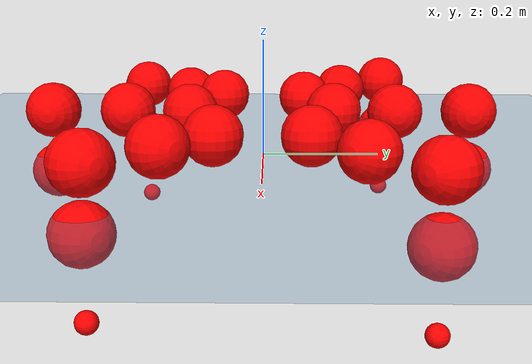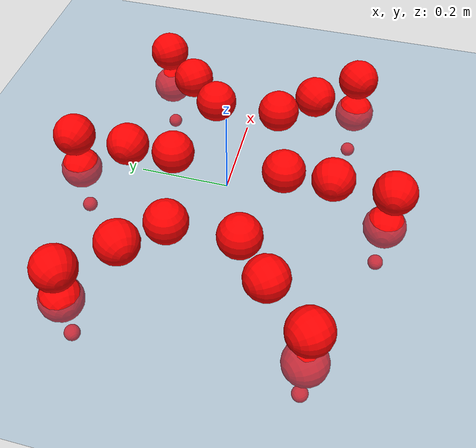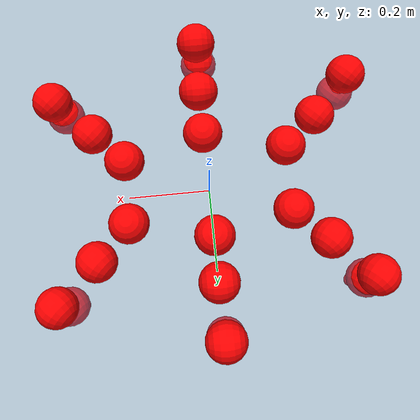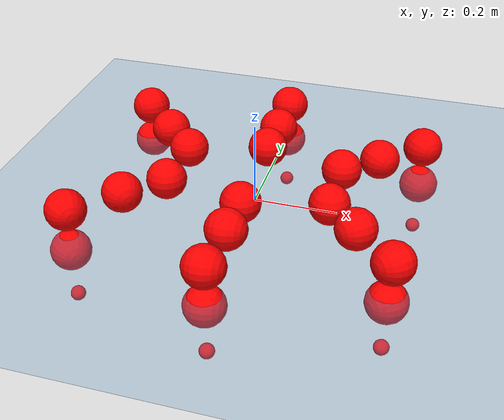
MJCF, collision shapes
<mujoco model="Golem">
  <compiler angle="radian" assetdir="assets" balanceinertia="true" inertiafromgeom="false"/>

  <option timestep="0.005" density="1.2" viscosity="2e-05"/>

  <size nkey="1"/>

  <visual>
    <quality shadowsize="8192"/>
    <map shadowclip="0.5"/>
  </visual>

  <default>
    <default class="/">
      <joint armature="0.01" damping="0.01" frictionloss="0.01"/>
      <geom contype="0" conaffinity="0" group="1" solref="-1000 -80"/>
      <site size="0.01 0.005 0.005" group="5"/>
      <general forcelimited="true" biastype="affine" gainprm="25" biasprm="0 -25 -0.5"/>
      <default class="visual">
        <geom type="mesh" group="2"/>
      </default>
      <default class="collision">
        <geom group="3"/>
      </default>
      <default class="foot">
        <geom size="0.01 0 0" condim="6" group="4" priority="1" solimp="0.015 1 0.01"/>
      </default>
      <default class="reward_collision_sphere">
        <geom group="5" rgba="1 0 0 1"/>
      </default>
    </default>
  </default>

  <asset>
    <texture type="skybox" colorspace="auto" name="//unnamed_texture_0" builtin="gradient" rgb1="0.95 0.95 0.95" rgb2="0.95 0.95 0.95" width="100" height="600"/>
    <texture type="2d" colorspace="auto" name="texplane" builtin="checker" rgb1="0.345 0.575 0.748" rgb2="0.345 0.575 0.748" markrgb="1 1 1" width="512" height="512"/>
    <material name="MatPlane" class="/" texture="texplane" texuniform="true" texrepeat="2 2" specular="0.9"/>
    <mesh name="body" class="/" file="body.stl" scale="0.001 0.001 0.001"/>
    <mesh name="coxa" class="/" file="coxa.stl" scale="0.001 0.001 0.001"/>
    <mesh name="femur" class="/" file="femur.stl" scale="0.001 0.001 0.001"/>
    <mesh name="tibia" class="/" file="tibia.stl" scale="0.001 0.001 0.001"/>
    <mesh name="tarsus" class="/" file="tarsus.stl" scale="0.001 0.001 0.001"/>
  </asset>

  <worldbody>
    <geom name="floor" class="/" size="100 100 0.125" type="plane" group="0" material="MatPlane"/>
    <light name="toplight_shadow" class="/" pos="0 0 5" dir="0.0990148 0.0990148 -0.990148" type="directional" ambient="0.04 0.04 0.04" diffuse="0.55 0.55 0.55" specular="0.12 0.12 0.12"/>
    <light name="toplight_fill" class="/" pos="0 0 5" dir="0.0990148 0.0990148 -0.990148" type="directional" castshadow="false" ambient="0.04 0.04 0.04" diffuse="0.3 0.3 0.3" specular="0.08 0.08 0.08"/>
    <body name="trunk" pos="0.000505944 -0.000500969 -0.000920154" quat="0.999999 0.00106139 0.000573879 -7.76206e-05">
      <inertial pos="-0.00208097 -0.00261837 0.00312006" quat="0.999825 0.0094366 -0.00398648 -0.0156847" mass="6.12698" diaginertia="0.0258086 0.0270629 0.01885"/>
      <joint name="//unnamed_joint_0" type="free"/>
      <geom name="//unnamed_geom_1" class="/" pos="0 0 0.0731211" quat="1 0 0 0" type="mesh" rgba="0.9 0.9 0.9 1" mesh="body"/>
      <site name="imu" class="/" pos="0.165202 -0.0108319 0.108269" size="0.0119374"/>
      <camera name="track" class="/" pos="0 -2.43689 0" quat="0.707107 0.707107 0 0" mode="trackcom"/>
      <camera name="ego_camera" class="/" pos="0.158635 0 0.114252" quat="-0.5 -0.5 0.5 0.5"/>
      <body name="coxa_RR" pos="-0.217814 -0.102947 0.0753497" quat="0.382687 -1.46819e-06 -4.35047e-06 -0.923878">
        <inertial pos="-0.0016718 -0.000834982 -0.00143562" quat="1 -0.000308121 -4.3532e-05 0.000278248" mass="0.344098" diaginertia="0.0265816 0.0270778 0.0197817"/>
        <joint name="coxa_joint_RR" class="/" pos="0 0 0" axis="0.000101905 -5.02668e-05 -1" range="-3.16815 3.06523" armature="0.0111247" damping="0" frictionloss="0.011634"/>
        <geom name="//unnamed_geom_2" class="/" type="mesh" rgba="0.2 0.2 0.2 1" mesh="coxa"/>
        <geom name="//unnamed_geom_3" class="reward_collision_sphere" size="0.0477497" pos="-0.0366081 0 0"/>
        <body name="femur_RR" pos="0.0726332 -0.00570176 -0.00587429" quat="0.50028 -0.49959 0.49912 0.501008">
          <inertial pos="-0.00195321 -0.003598 -0.00494463" quat="0.999921 -0.0101046 0.00419359 -0.00614706" mass="0.34052" diaginertia="0.0268538 0.0277441 0.0187296"/>
          <joint name="femur_joint_RR" class="/" pos="0 0 0" axis="-0.0127188 -0.00679794 -0.999896" range="-3.08895 3.13676" armature="0.0133032" damping="0.00909223" frictionloss="0.0089074"/>
          <geom name="//unnamed_geom_4" class="/" type="mesh" rgba="0.9 0.9 0.9 1" mesh="femur"/>
          <geom name="//unnamed_geom_5" class="reward_collision_sphere" size="0.0477497"/>
          <body name="tibia_RR" pos="4.77614e-05 -0.135926 0.0053681" quat="-0.0002264 1 0.000821266 -8.90099e-05">
            <inertial pos="0.000588743 0.004529 -0.00230258" quat="0.999957 -0.00648098 -0.00126173 -0.00645435" mass="0.342947" diaginertia="0.0271979 0.0265658 0.0192443"/>
            <joint name="tibia_joint_RR" class="/" pos="0 0 0" axis="-0.00371018 0.00150747 0.999992" stiffness="0.0083942" range="-3.13809 3.13794" armature="0.013061" damping="0" frictionloss="0.011947"/>
            <geom name="//unnamed_geom_6" class="/" type="mesh" rgba="0.2 0.2 0.2 1" mesh="tibia"/>
            <geom name="//unnamed_geom_7" class="reward_collision_sphere" size="0.0477497"/>
            <body name="tarsus_RR" pos="0.111222 0.00141639 1.31687e-05" quat="0.999999 -0.000835011 -0.000638907 5.15399e-05">
              <inertial pos="0.0733409 0.00313402 -0.00113185" quat="0.498966 0.499708 0.498802 0.502515" mass="0.340614" diaginertia="0.0263287 0.0264299 0.0203714"/>
              <joint name="tarsus_joint_RR" class="/" pos="0 0 0" axis="-0.00558963 -0.0132768 0.999896" range="-3.04312 3.03317" armature="0.0127807" damping="0" frictionloss="0.012081"/>
              <geom name="//unnamed_geom_8" class="/" type="mesh" rgba="0.9 0.9 0.9 1" mesh="tarsus"/>
              <geom name="foot_1" class="foot" size="0.0117919" pos="0.13667 0 0" quat="0 -0.707107 0 0.707107"/>
              <geom name="//unnamed_geom_10" class="reward_collision_sphere" size="0.0477497"/>
              <geom name="//unnamed_geom_11" class="reward_collision_sphere" size="0.0179062" pos="0.131179 0 0"/>
              <site name="foot_1" class="foot" pos="0.13667 0 0" quat="0 -0.707107 0 0.707107" size="0.0119374"/>
            </body>
          </body>
        </body>
      </body>
      <body name="coxa_RM" pos="0.00345654 -0.16249 0.0783205" quat="0.707423 0.000109752 -0.000462951 -0.70679">
        <inertial pos="0.00167925 -0.000378827 0.000977876" quat="0.999753 -0.00958126 -0.0113815 -0.0165003" mass="0.341254" diaginertia="0.0271745 0.0268189 0.0189359"/>
        <joint name="coxa_joint_RM" class="/" pos="0 0 0" axis="0.00383563 -0.0128572 -0.99991" range="-3.18796 3.18628" armature="0.0114783" damping="0.0259285" frictionloss="0.0106587"/>
        <geom name="//unnamed_geom_12" class="/" type="mesh" rgba="0.2 0.2 0.2 1" mesh="coxa"/>
        <geom name="//unnamed_geom_13" class="reward_collision_sphere" size="0.0477497" pos="-0.0366081 0 0"/>
        <body name="femur_RM" pos="0.0712706 0.000863772 0.00232514" quat="0.501115 -0.500217 0.498722 0.499944">
          <inertial pos="0.00386201 -0.000646821 0.00509798" quat="0.999951 -0.00245002 0.00377805 -0.00878442" mass="0.330021" diaginertia="0.0263388 0.0267198 0.019786"/>
          <joint name="femur_joint_RM" class="/" pos="0 0 0" axis="0.00157749 0.00432963 -0.999989" stiffness="0.00445792" range="-3.08982 3.06786" armature="0.0130809" damping="0.0277219" frictionloss="0.0137368"/>
          <geom name="//unnamed_geom_14" class="/" type="mesh" rgba="0.9 0.9 0.9 1" mesh="femur"/>
          <geom name="//unnamed_geom_15" class="reward_collision_sphere" size="0.0477497"/>
          <body name="tibia_RM" pos="0.00122164 -0.131015 -0.00504562" quat="-0.000443865 1 -0.000104025 -0.000284569">
            <inertial pos="0.00193975 0.00270763 -0.00155031" quat="0.999998 -0.00081452 0.00158786 0.000138366" mass="0.354527" diaginertia="0.0274882 0.0276314 0.0204538"/>
            <joint name="tibia_joint_RM" class="/" pos="0 0 0" axis="-0.0133385 -0.0124087 0.999834" range="-3.10141 3.19005" armature="0.0105058" damping="0.00372525" frictionloss="0.0127846"/>
            <geom name="//unnamed_geom_16" class="/" type="mesh" rgba="0.2 0.2 0.2 1" mesh="tibia"/>
            <geom name="//unnamed_geom_17" class="reward_collision_sphere" size="0.0477497"/>
            <body name="tarsus_RM" pos="0.108176 -0.00466546 0.00363905" quat="0.999999 9.12734e-06 0.000905503 0.000821273">
              <inertial pos="0.0707366 -4.53241e-06 -0.000400003" quat="0.496442 0.50443 0.501596 0.497492" mass="0.349783" diaginertia="0.0277894 0.02761 0.0211575"/>
              <joint name="tarsus_joint_RM" class="/" pos="0 0 0" axis="-0.00709187 0.0056818 0.999959" range="-3.08496 3.22245" armature="0.0121744" damping="0.00189703" frictionloss="0.0104547"/>
              <geom name="//unnamed_geom_18" class="/" type="mesh" rgba="0.9 0.9 0.9 1" mesh="tarsus"/>
              <geom name="foot_2" class="foot" size="0.0128674" pos="0.13667 0 0" quat="0 -0.707107 0 0.707107"/>
              <geom name="//unnamed_geom_20" class="reward_collision_sphere" size="0.0477497"/>
              <geom name="//unnamed_geom_21" class="reward_collision_sphere" size="0.0179062" pos="0.131179 0 0"/>
              <site name="foot_2" class="foot" pos="0.13667 0 0" quat="0 -0.707107 0 0.707107" size="0.0119374"/>
            </body>
          </body>
        </body>
      </body>
      <body name="coxa_RF" pos="0.220973 -0.0997446 0.0760355" quat="0.923924 3.95857e-05 -0.000242852 -0.382575">
        <inertial pos="0.00211494 0.00583129 0.00246154" quat="0.99993 -0.00250108 0.00879845 0.00745082" mass="0.331761" diaginertia="0.0264658 0.0278549 0.0201947"/>
        <joint name="coxa_joint_RF" class="/" pos="0 0 0" axis="-0.00062009 -0.0114099 -0.999935" range="-3.13947 3.12334" armature="0.0108453" damping="0.0134928" frictionloss="0.0123257"/>
        <geom name="//unnamed_geom_22" class="/" type="mesh" rgba="0.2 0.2 0.2 1" mesh="coxa"/>
        <geom name="//unnamed_geom_23" class="reward_collision_sphere" size="0.0477497" pos="-0.0366081 0 0"/>
        <body name="femur_RF" pos="0.0682665 -0.000688145 -0.00047385" quat="0.500193 -0.500222 0.499612 0.499973">
          <inertial pos="0.00260726 6.71474e-05 -0.00169523" quat="0.999926 -0.0017605 -0.0118474 0.00191306" mass="0.348218" diaginertia="0.0268408 0.0287688 0.019464"/>
          <joint name="femur_joint_RF" class="/" pos="0 0 0" axis="-3.96831e-06 0.000102476 -1" range="-3.21173 3.18712" armature="0.0114602" damping="0.00869871" frictionloss="0.0125992"/>
          <geom name="//unnamed_geom_24" class="/" type="mesh" rgba="0.9 0.9 0.9 1" mesh="femur"/>
          <geom name="//unnamed_geom_25" class="reward_collision_sphere" size="0.0477497"/>
          <body name="tibia_RF" pos="0.00101237 -0.131404 0.00138014" quat="-0.000102049 1 6.4593e-05 9.98446e-05">
            <inertial pos="-0.000538935 -0.000987066 -0.000355471" quat="0.999751 -0.00339402 -0.0216486 -0.00414264" mass="0.321283" diaginertia="0.0276054 0.0265291 0.0192596"/>
            <joint name="tibia_joint_RF" class="/" pos="0 0 0" axis="0.000447143 -0.00774109 0.99997" range="-3.14562 3.13427" armature="0.0134424" damping="0" frictionloss="0.0110202"/>
            <geom name="//unnamed_geom_26" class="/" type="mesh" rgba="0.2 0.2 0.2 1" mesh="tibia"/>
            <geom name="//unnamed_geom_27" class="reward_collision_sphere" size="0.0477497"/>
            <body name="tarsus_RF" pos="0.102343 -0.000248961 0.00587622" quat="1 -0.00019125 0.000105453 -0.00018977">
              <inertial pos="0.0752273 0.00270197 0.00209627" quat="0.492758 0.499682 0.508486 0.498949" mass="0.355134" diaginertia="0.0265315 0.0272582 0.0195225"/>
              <joint name="tarsus_joint_RF" class="/" pos="0 0 0" axis="-0.00354245 0.0094829 0.999949" range="-3.11295 3.13667" armature="0.0120116" damping="0" frictionloss="0.0105339"/>
              <geom name="//unnamed_geom_28" class="/" type="mesh" rgba="0.9 0.9 0.9 1" mesh="tarsus"/>
              <geom name="foot_3" class="foot" size="0.0128844" pos="0.13667 0 0" quat="0 -0.707107 0 0.707107"/>
              <geom name="//unnamed_geom_30" class="reward_collision_sphere" size="0.0477497"/>
              <geom name="//unnamed_geom_31" class="reward_collision_sphere" size="0.0179062" pos="0.131179 0 0"/>
              <site name="foot_3" class="foot" pos="0.13667 0 0" quat="0 -0.707107 0 0.707107" size="0.0119374"/>
            </body>
          </body>
        </body>
      </body>
      <body name="coxa_LR" pos="-0.217434 0.103032 0.0719414" quat="0.382527 -0.000492389 -0.000112934 0.923944">
        <inertial pos="-0.00192098 -0.00235848 -0.00236505" quat="0.999961 -0.00678134 -0.00234765 -0.00511613" mass="0.338659" diaginertia="0.0275167 0.0270827 0.0209785"/>
        <joint name="coxa_joint_LR" class="/" pos="0 0 0" axis="0.0154516 0.00724455 -0.999854" stiffness="0.00488976" range="-3.16284 3.18072" armature="0.0108634" damping="0.0375132" frictionloss="0.0142851"/>
        <geom name="//unnamed_geom_32" class="/" type="mesh" rgba="0.2 0.2 0.2 1" mesh="coxa"/>
        <geom name="//unnamed_geom_33" class="reward_collision_sphere" size="0.0477497" pos="-0.0366081 0 0"/>
        <body name="femur_LR" pos="0.0714234 0.000682721 0.00299597" quat="0.498835 -0.500583 0.499874 0.500705">
          <inertial pos="-0.00303393 -0.00165142 -0.000989248" quat="0.999947 0.0084386 0.00525894 -0.00263414" mass="0.364665" diaginertia="0.0267032 0.0267059 0.0190404"/>
          <joint name="femur_joint_LR" class="/" pos="0 0 0" axis="0.00405735 0.00462565 0.999981" stiffness="0.0084777" range="-3.04181 3.20961" armature="0.0141389" damping="0.0144234" frictionloss="0.0118492"/>
          <geom name="//unnamed_geom_34" class="/" type="mesh" rgba="0.9 0.9 0.9 1" mesh="femur"/>
          <geom name="//unnamed_geom_35" class="reward_collision_sphere" size="0.0477497"/>
          <body name="tibia_LR" pos="-0.00408269 -0.130287 -0.000735423" quat="-0.000165112 1 6.72415e-05 0.000387149">
            <inertial pos="0.000858631 0.00153565 0.00186891" quat="0.999992 0.00372171 -0.00165688 0.00039968" mass="0.332064" diaginertia="0.0278019 0.0259852 0.0194075"/>
            <joint name="tibia_joint_LR" class="/" pos="0 0 0" axis="0.0127869 -0.00549043 -0.999903" range="-3.092 3.18553" armature="0.0107316" damping="0.000865905" frictionloss="0.0115817"/>
            <geom name="//unnamed_geom_36" class="/" type="mesh" rgba="0.2 0.2 0.2 1" mesh="tibia"/>
            <geom name="//unnamed_geom_37" class="reward_collision_sphere" size="0.0477497"/>
            <body name="tarsus_LR" pos="0.102463 0.0035794 0.000446785" quat="0.999998 0.000344888 0.000485538 0.00173254">
              <inertial pos="0.0755517 0.00200323 -0.00268573" quat="0.499085 0.499584 0.499799 0.501529" mass="0.336999" diaginertia="0.0265483 0.0272799 0.0191423"/>
              <joint name="tarsus_joint_LR" class="/" pos="0 0 0" axis="7.18359e-05 0.000220302 -1" stiffness="0.00353716" range="-3.14929 3.15981" armature="0.0129017" damping="0.0382395" frictionloss="0.0101593"/>
              <geom name="//unnamed_geom_38" class="/" type="mesh" rgba="0.9 0.9 0.9 1" mesh="tarsus"/>
              <geom name="foot_4" class="foot" size="0.0127098" pos="0.13667 0 0" quat="0.707107 0 -0.707107 0"/>
              <geom name="//unnamed_geom_40" class="reward_collision_sphere" size="0.0477497"/>
              <geom name="//unnamed_geom_41" class="reward_collision_sphere" size="0.0179062" pos="0.131179 0 0"/>
              <site name="foot_4" class="foot" pos="0.13667 0 0" quat="0.707107 0 -0.707107 0" size="0.0119374"/>
            </body>
          </body>
        </body>
      </body>
      <body name="coxa_LM" pos="-0.00226584 0.159124 0.0790255" quat="0.707422 -1.08865e-05 0.000158152 0.706792">
        <inertial pos="-0.00270542 -0.000659328 0.00248903" quat="0.999947 -0.00363238 -0.00124508 -0.00958655" mass="0.353108" diaginertia="0.0260713 0.0278371 0.0194941"/>
        <joint name="coxa_joint_LM" class="/" pos="0 0 0" axis="-0.00408903 0.00536821 -0.999977" range="-3.09756 3.14972" armature="0.0120634" damping="0.00318583" frictionloss="0.0118259"/>
        <geom name="//unnamed_geom_42" class="/" type="mesh" rgba="0.2 0.2 0.2 1" mesh="coxa"/>
        <geom name="//unnamed_geom_43" class="reward_collision_sphere" size="0.0477497" pos="-0.0366081 0 0"/>
        <body name="femur_LM" pos="0.0698045 0.000174338 -0.00178639" quat="0.499998 -0.499999 0.500002 0.500001">
          <inertial pos="-0.000232612 -0.000884793 -0.000777465" quat="0.999937 0.0079545 0.00796571 0.000204144" mass="0.328948" diaginertia="0.0287025 0.0261276 0.0187082"/>
          <joint name="femur_joint_LM" class="/" pos="0 0 0" axis="0.0101949 -0.0179941 0.999786" stiffness="0.00952999" range="-3.21512 3.11209" armature="0.0102076" damping="0.0387317" frictionloss="0.01202"/>
          <geom name="//unnamed_geom_44" class="/" type="mesh" rgba="0.9 0.9 0.9 1" mesh="femur"/>
          <geom name="//unnamed_geom_45" class="reward_collision_sphere" size="0.0477497"/>
          <body name="tibia_LM" pos="-0.000421686 -0.127999 0.00272727" quat="-0.000679345 1 0.000628569 1.09309e-05">
            <inertial pos="0.00377793 0.000166572 0.00042327" quat="0.999937 -0.00741028 0.00370185 0.00751089" mass="0.356429" diaginertia="0.0277443 0.0275204 0.0198916"/>
            <joint name="tibia_joint_LM" class="/" pos="0 0 0" axis="0.00150525 0.00024571 -0.999999" range="-3.09041 3.11194" armature="0.0123878" damping="0" frictionloss="0.0153149"/>
            <geom name="//unnamed_geom_46" class="/" type="mesh" rgba="0.2 0.2 0.2 1" mesh="tibia"/>
            <geom name="//unnamed_geom_47" class="reward_collision_sphere" size="0.0477497"/>
            <body name="tarsus_LM" pos="0.103626 -0.00239577 -0.00253527" quat="0.999999 0.0011577 0.000273533 0.000401471">
              <inertial pos="0.0750038 0.000788869 6.20037e-05" quat="0.505615 0.497286 0.50533 0.491632" mass="0.348697" diaginertia="0.0277662 0.0268235 0.0199017"/>
              <joint name="tarsus_joint_LM" class="/" pos="0 0 0" axis="0.00986334 -0.0116751 -0.999883" range="-3.1658 3.13901" armature="0.0133077" damping="0" frictionloss="0.0129906"/>
              <geom name="//unnamed_geom_48" class="/" type="mesh" rgba="0.9 0.9 0.9 1" mesh="tarsus"/>
              <geom name="foot_5" class="foot" size="0.00939162" pos="0.13667 0 0" quat="0.707107 0 -0.707107 0"/>
              <geom name="//unnamed_geom_50" class="reward_collision_sphere" size="0.0477497"/>
              <geom name="//unnamed_geom_51" class="reward_collision_sphere" size="0.0179062" pos="0.131179 0 0"/>
              <site name="foot_5" class="foot" pos="0.13667 0 0" quat="0.707107 0 -0.707107 0" size="0.0119374"/>
            </body>
          </body>
        </body>
      </body>
      <body name="coxa_LF" pos="0.21847 0.103132 0.0751894" quat="0.923578 -0.000196796 0.00012782 0.383411">
        <inertial pos="-0.000225416 0.00483486 0.000441331" quat="0.99989 0.0107416 -0.0101056 0.0015135" mass="0.327342" diaginertia="0.0251047 0.0242995 0.0176222"/>
        <joint name="coxa_joint_LF" class="/" pos="0 0 0" axis="0.000516169 -0.000303745 -1" stiffness="0.00406349" range="-3.16017 3.13057" armature="0.012481" damping="0" frictionloss="0.0131993"/>
        <geom name="//unnamed_geom_52" class="/" type="mesh" rgba="0.2 0.2 0.2 1" mesh="coxa"/>
        <geom name="//unnamed_geom_53" class="reward_collision_sphere" size="0.0477497" pos="-0.0366081 0 0"/>
        <body name="femur_LF" pos="0.075804 0.000768122 -0.00550466" quat="0.499189 -0.500145 0.500426 0.500239">
          <inertial pos="-0.00125031 -0.000210127 0.00280751" quat="0.999922 -0.0103883 0.0066226 -0.0022002" mass="0.339718" diaginertia="0.0278907 0.027239 0.0198831"/>
          <joint name="femur_joint_LF" class="/" pos="0 0 0" axis="0.00967034 -0.00880636 0.999914" stiffness="0.0314593" range="-3.18829 3.13377" armature="0.0118191" damping="0.0212224" frictionloss="0.0115316"/>
          <geom name="//unnamed_geom_54" class="/" type="mesh" rgba="0.9 0.9 0.9 1" mesh="femur"/>
          <geom name="//unnamed_geom_55" class="reward_collision_sphere" size="0.0477497"/>
          <body name="tibia_LF" pos="0.00312401 -0.13186 -0.000337298" quat="-0.000239303 1 3.10686e-05 0.000150996">
            <inertial pos="-0.00376488 -0.00375391 -0.00523389" quat="0.999941 -0.000815417 -0.0103048 0.00325472" mass="0.34204" diaginertia="0.0276241 0.0269424 0.0183117"/>
            <joint name="tibia_joint_LF" class="/" pos="0 0 0" axis="0.00772869 -0.00240658 -0.999967" range="-3.15039 3.21355" armature="0.0104246" damping="0.00992725" frictionloss="0.0120097"/>
            <geom name="//unnamed_geom_56" class="/" type="mesh" rgba="0.2 0.2 0.2 1" mesh="tibia"/>
            <geom name="//unnamed_geom_57" class="reward_collision_sphere" size="0.0477497"/>
            <body name="tarsus_LF" pos="0.107988 -0.000407769 0.00142361" quat="1 -0.000368597 0.000336556 -0.000125479">
              <inertial pos="0.0736256 -0.00172309 -0.00370225" quat="0.493607 0.497944 0.507867 0.500476" mass="0.345496" diaginertia="0.0261705 0.0267078 0.0183048"/>
              <joint name="tarsus_joint_LF" class="/" pos="0 0 0" axis="1.31883e-06 -0.00405108 -0.999992" range="-3.09374 3.2203" armature="0.0123364" damping="0.0295382" frictionloss="0.0122744"/>
              <geom name="//unnamed_geom_58" class="/" type="mesh" rgba="0.9 0.9 0.9 1" mesh="tarsus"/>
              <geom name="foot_6" class="foot" size="0.0117777" pos="0.13667 0 0" quat="0.707107 0 -0.707107 0"/>
              <geom name="//unnamed_geom_60" class="reward_collision_sphere" size="0.0477497"/>
              <geom name="//unnamed_geom_61" class="reward_collision_sphere" size="0.0179062" pos="0.131179 0 0"/>
              <site name="foot_6" class="foot" pos="0.13667 0 0" quat="0.707107 0 -0.707107 0" size="0.0119374"/>
            </body>
          </body>
        </body>
      </body>
    </body>
  </worldbody>

  <contact>
    <pair class="/" geom1="floor" geom2="foot_1" name="//unnamed_contact_0"/>
    <pair class="/" geom1="floor" geom2="foot_2" name="//unnamed_contact_1"/>
    <pair class="/" geom1="floor" geom2="foot_3" name="//unnamed_contact_2"/>
    <pair class="/" geom1="floor" geom2="foot_4" name="//unnamed_contact_3"/>
    <pair class="/" geom1="floor" geom2="foot_5" name="//unnamed_contact_4"/>
    <pair class="/" geom1="floor" geom2="foot_6" name="//unnamed_contact_5"/>
  </contact>

  <actuator>
    <general name="coxa_joint_RR" class="/" joint="coxa_joint_RR" forcerange="-7.89342 7.89342" gainprm="25.8387" biasprm="0 -25.8387 -0.591361"/>
    <general name="femur_joint_RR" class="/" joint="femur_joint_RR" forcerange="-8.57975 8.57975" gainprm="25.8387" biasprm="0 -25.8387 -0.591361"/>
    <general name="tibia_joint_RR" class="/" joint="tibia_joint_RR" forcerange="-8.84873 8.84873" gainprm="25.8387" biasprm="0 -25.8387 -0.591361"/>
    <general name="tarsus_joint_RR" class="/" joint="tarsus_joint_RR" forcerange="-9.24835 9.24835" gainprm="25.8387" biasprm="0 -25.8387 -0.591361"/>
    <general name="coxa_joint_RM" class="/" joint="coxa_joint_RM" forcerange="-8.20971 8.20971" gainprm="25.8387" biasprm="0 -25.8387 -0.591361"/>
    <general name="femur_joint_RM" class="/" joint="femur_joint_RM" forcerange="-8.58515 8.58515" gainprm="25.8387" biasprm="0 -25.8387 -0.591361"/>
    <general name="tibia_joint_RM" class="/" joint="tibia_joint_RM" forcerange="-8.80416 8.80416" gainprm="25.8387" biasprm="0 -25.8387 -0.591361"/>
    <general name="tarsus_joint_RM" class="/" joint="tarsus_joint_RM" forcerange="-9.13442 9.13442" gainprm="25.8387" biasprm="0 -25.8387 -0.591361"/>
    <general name="coxa_joint_RF" class="/" joint="coxa_joint_RF" forcerange="-8.25874 8.25874" gainprm="25.8387" biasprm="0 -25.8387 -0.591361"/>
    <general name="femur_joint_RF" class="/" joint="femur_joint_RF" forcerange="-8.72701 8.72701" gainprm="25.8387" biasprm="0 -25.8387 -0.591361"/>
    <general name="tibia_joint_RF" class="/" joint="tibia_joint_RF" forcerange="-8.78925 8.78925" gainprm="25.8387" biasprm="0 -25.8387 -0.591361"/>
    <general name="tarsus_joint_RF" class="/" joint="tarsus_joint_RF" forcerange="-7.90681 7.90681" gainprm="25.8387" biasprm="0 -25.8387 -0.591361"/>
    <general name="coxa_joint_LR" class="/" joint="coxa_joint_LR" forcerange="-8.03471 8.03471" gainprm="25.8387" biasprm="0 -25.8387 -0.591361"/>
    <general name="femur_joint_LR" class="/" joint="femur_joint_LR" forcerange="-9.51059 9.51059" gainprm="25.8387" biasprm="0 -25.8387 -0.591361"/>
    <general name="tibia_joint_LR" class="/" joint="tibia_joint_LR" forcerange="-9.49087 9.49087" gainprm="25.8387" biasprm="0 -25.8387 -0.591361"/>
    <general name="tarsus_joint_LR" class="/" joint="tarsus_joint_LR" forcerange="-8.85061 8.85061" gainprm="25.8387" biasprm="0 -25.8387 -0.591361"/>
    <general name="coxa_joint_LM" class="/" joint="coxa_joint_LM" forcerange="-8.77026 8.77026" gainprm="25.8387" biasprm="0 -25.8387 -0.591361"/>
    <general name="femur_joint_LM" class="/" joint="femur_joint_LM" forcerange="-8.32696 8.32696" gainprm="25.8387" biasprm="0 -25.8387 -0.591361"/>
    <general name="tibia_joint_LM" class="/" joint="tibia_joint_LM" forcerange="-8.79452 8.79452" gainprm="25.8387" biasprm="0 -25.8387 -0.591361"/>
    <general name="tarsus_joint_LM" class="/" joint="tarsus_joint_LM" forcerange="-8.84396 8.84396" gainprm="25.8387" biasprm="0 -25.8387 -0.591361"/>
    <general name="coxa_joint_LF" class="/" joint="coxa_joint_LF" forcerange="-7.95962 7.95962" gainprm="25.8387" biasprm="0 -25.8387 -0.591361"/>
    <general name="femur_joint_LF" class="/" joint="femur_joint_LF" forcerange="-8.39613 8.39613" gainprm="25.8387" biasprm="0 -25.8387 -0.591361"/>
    <general name="tibia_joint_LF" class="/" joint="tibia_joint_LF" forcerange="-8.60061 8.60061" gainprm="25.8387" biasprm="0 -25.8387 -0.591361"/>
    <general name="tarsus_joint_LF" class="/" joint="tarsus_joint_LF" forcerange="-10.522 10.522" gainprm="25.8387" biasprm="0 -25.8387 -0.591361"/>
  </actuator>

  <sensor>
    <gyro site="imu" name="imu_angular_velocity"/>
    <velocimeter site="imu" name="imu_linear_velocity"/>
    <framelinvel objtype="site" objname="foot_1" name="foot_1_global_linear_velocity"/>
    <framelinvel objtype="site" objname="foot_2" name="foot_2_global_linear_velocity"/>
    <framelinvel objtype="site" objname="foot_3" name="foot_3_global_linear_velocity"/>
    <framelinvel objtype="site" objname="foot_4" name="foot_4_global_linear_velocity"/>
    <framelinvel objtype="site" objname="foot_5" name="foot_5_global_linear_velocity"/>
    <framelinvel objtype="site" objname="foot_6" name="foot_6_global_linear_velocity"/>
  </sensor>

  <keyframe>
    <key name="home" qpos="0 0 0.1457 1 0 0 0 0 0 0 0 0 0 0 0 0 0 0 0 0 0 0 0 0 0 0 0 0 0 0 0"/>
  </keyframe>
</mujoco>
